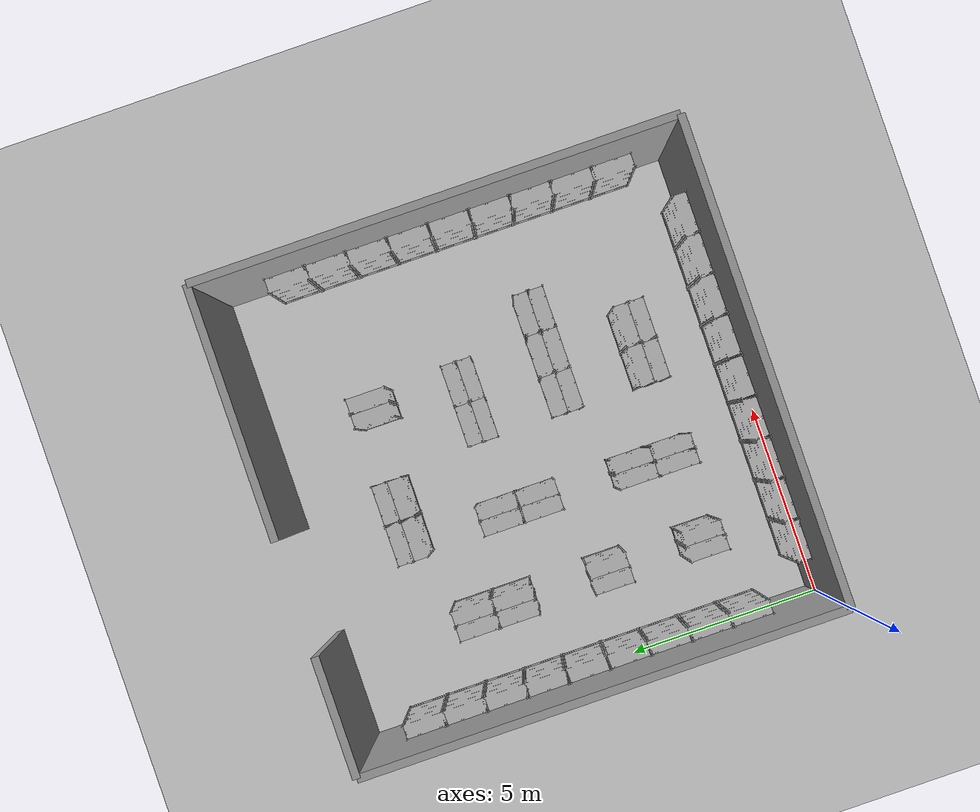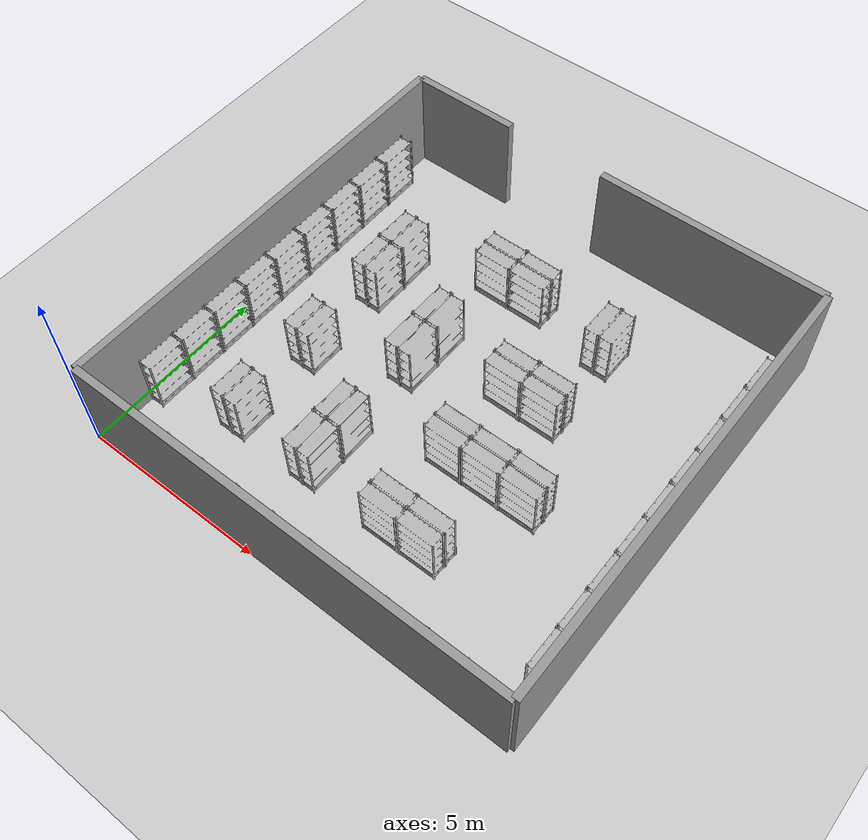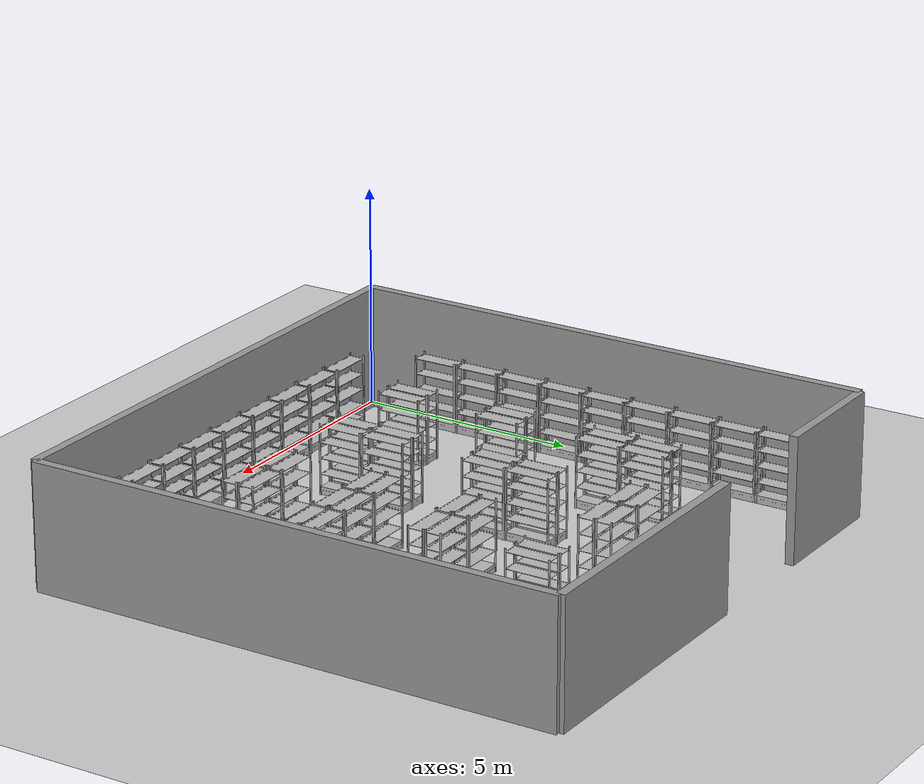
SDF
<sdf version="1.6">
 <world name="default">
  <model name="ground_plane">
   <static>1</static>
   <link name="link">
    <collision name="collision">
     <geometry><plane><normal>0 0 1</normal><size>100 100</size></plane></geometry>
     <surface>
      <contact><collide_bitmask>65535</collide_bitmask></contact>
      <friction><ode><mu>1000</mu><mu2>1000</mu2></ode></friction>
     </surface>
    </collision>
    <visual name="visual">
     <cast_shadows>0</cast_shadows>
     <geometry><plane><normal>0 0 1</normal><size>100 100</size></plane></geometry>
     <material>
      <script><uri>file://media/materials/scripts/gazebo.material</uri><name>Gazebo/Grey</name></script>
     </material>
    </visual>
   </link>
  </model>
  <model name="store_shelf_moduled_0">
   <link name="link">
    <collision name="collision">
     <geometry><mesh><uri>model://store_shelf_moduled/meshes/store_shelf_moduled.dae</uri></mesh></geometry>
    </collision>
    <visual name="visual">
     <geometry><mesh><uri>model://store_shelf_moduled/meshes/store_shelf_moduled.dae</uri></mesh></geometry>
    </visual>
    <inertial>
     <mass>1000</mass>
     <inertia>
      <ixx>840083</ixx>
      <ixy>0</ixy>
      <ixz>0</ixz>
      <iyy>475500</iyy>
      <iyz>0</iyz>
      <izz>1.30208e+06</izz>
     </inertia>
    </inertial>
   </link>
   <static>1</static>
   <pose>1.16 0.2 0 0 0 0</pose>
  </model>
  <model name="store_shelf_moduled_1">
   <link name="link">
    <collision name="collision">
     <geometry><mesh><uri>model://store_shelf_moduled/meshes/store_shelf_moduled.dae</uri></mesh></geometry>
    </collision>
    <visual name="visual">
     <geometry><mesh><uri>model://store_shelf_moduled/meshes/store_shelf_moduled.dae</uri></mesh></geometry>
    </visual>
    <inertial>
     <mass>1000</mass>
     <inertia>
      <ixx>840083</ixx>
      <ixy>0</ixy>
      <ixz>0</ixz>
      <iyy>475500</iyy>
      <iyz>0</iyz>
      <izz>1.30208e+06</izz>
     </inertia>
    </inertial>
   </link>
   <static>1</static>
   <pose>2.22 0.2 0 0 0 0</pose>
  </model>
  <model name="store_shelf_moduled_2">
   <link name="link">
    <collision name="collision">
     <geometry><mesh><uri>model://store_shelf_moduled/meshes/store_shelf_moduled.dae</uri></mesh></geometry>
    </collision>
    <visual name="visual">
     <geometry><mesh><uri>model://store_shelf_moduled/meshes/store_shelf_moduled.dae</uri></mesh></geometry>
    </visual>
    <inertial>
     <mass>1000</mass>
     <inertia>
      <ixx>840083</ixx>
      <ixy>0</ixy>
      <ixz>0</ixz>
      <iyy>475500</iyy>
      <iyz>0</iyz>
      <izz>1.30208e+06</izz>
     </inertia>
    </inertial>
   </link>
   <static>1</static>
   <pose>3.28 0.2 0 0 0 0</pose>
  </model>
  <model name="store_shelf_moduled_3">
   <link name="link">
    <collision name="collision">
     <geometry><mesh><uri>model://store_shelf_moduled/meshes/store_shelf_moduled.dae</uri></mesh></geometry>
    </collision>
    <visual name="visual">
     <geometry><mesh><uri>model://store_shelf_moduled/meshes/store_shelf_moduled.dae</uri></mesh></geometry>
    </visual>
    <inertial>
     <mass>1000</mass>
     <inertia>
      <ixx>840083</ixx>
      <ixy>0</ixy>
      <ixz>0</ixz>
      <iyy>475500</iyy>
      <iyz>0</iyz>
      <izz>1.30208e+06</izz>
     </inertia>
    </inertial>
   </link>
   <static>1</static>
   <pose>4.34 0.2 0 0 0 0</pose>
  </model>
  <model name="store_shelf_moduled_4">
   <link name="link">
    <collision name="collision">
     <geometry><mesh><uri>model://store_shelf_moduled/meshes/store_shelf_moduled.dae</uri></mesh></geometry>
    </collision>
    <visual name="visual">
     <geometry><mesh><uri>model://store_shelf_moduled/meshes/store_shelf_moduled.dae</uri></mesh></geometry>
    </visual>
    <inertial>
     <mass>1000</mass>
     <inertia>
      <ixx>840083</ixx>
      <ixy>0</ixy>
      <ixz>0</ixz>
      <iyy>475500</iyy>
      <iyz>0</iyz>
      <izz>1.30208e+06</izz>
     </inertia>
    </inertial>
   </link>
   <static>1</static>
   <pose>5.4 0.2 0 0 0 0</pose>
  </model>
  <model name="store_shelf_moduled_5">
   <link name="link">
    <collision name="collision">
     <geometry><mesh><uri>model://store_shelf_moduled/meshes/store_shelf_moduled.dae</uri></mesh></geometry>
    </collision>
    <visual name="visual">
     <geometry><mesh><uri>model://store_shelf_moduled/meshes/store_shelf_moduled.dae</uri></mesh></geometry>
    </visual>
    <inertial>
     <mass>1000</mass>
     <inertia>
      <ixx>840083</ixx>
      <ixy>0</ixy>
      <ixz>0</ixz>
      <iyy>475500</iyy>
      <iyz>0</iyz>
      <izz>1.30208e+06</izz>
     </inertia>
    </inertial>
   </link>
   <static>1</static>
   <pose>6.46 0.2 0 0 0 0</pose>
  </model>
  <model name="store_shelf_moduled_6">
   <link name="link">
    <collision name="collision">
     <geometry><mesh><uri>model://store_shelf_moduled/meshes/store_shelf_moduled.dae</uri></mesh></geometry>
    </collision>
    <visual name="visual">
     <geometry><mesh><uri>model://store_shelf_moduled/meshes/store_shelf_moduled.dae</uri></mesh></geometry>
    </visual>
    <inertial>
     <mass>1000</mass>
     <inertia>
      <ixx>840083</ixx>
      <ixy>0</ixy>
      <ixz>0</ixz>
      <iyy>475500</iyy>
      <iyz>0</iyz>
      <izz>1.30208e+06</izz>
     </inertia>
    </inertial>
   </link>
   <static>1</static>
   <pose>7.52 0.2 0 0 0 0</pose>
  </model>
  <model name="store_shelf_moduled_7">
   <link name="link">
    <collision name="collision">
     <geometry><mesh><uri>model://store_shelf_moduled/meshes/store_shelf_moduled.dae</uri></mesh></geometry>
    </collision>
    <visual name="visual">
     <geometry><mesh><uri>model://store_shelf_moduled/meshes/store_shelf_moduled.dae</uri></mesh></geometry>
    </visual>
    <inertial>
     <mass>1000</mass>
     <inertia>
      <ixx>840083</ixx>
      <ixy>0</ixy>
      <ixz>0</ixz>
      <iyy>475500</iyy>
      <iyz>0</iyz>
      <izz>1.30208e+06</izz>
     </inertia>
    </inertial>
   </link>
   <static>1</static>
   <pose>8.58 0.2 0 0 0 0</pose>
  </model>
  <model name="store_shelf_moduled_8">
   <link name="link">
    <collision name="collision">
     <geometry><mesh><uri>model://store_shelf_moduled/meshes/store_shelf_moduled.dae</uri></mesh></geometry>
    </collision>
    <visual name="visual">
     <geometry><mesh><uri>model://store_shelf_moduled/meshes/store_shelf_moduled.dae</uri></mesh></geometry>
    </visual>
    <inertial>
     <mass>1000</mass>
     <inertia>
      <ixx>840083</ixx>
      <ixy>0</ixy>
      <ixz>0</ixz>
      <iyy>475500</iyy>
      <iyz>0</iyz>
      <izz>1.30208e+06</izz>
     </inertia>
    </inertial>
   </link>
   <static>1</static>
   <pose>9.64 0.2 0 0 0 0</pose>
  </model>
  <model name="store_shelf_moduled_9">
   <link name="link">
    <collision name="collision">
     <geometry><mesh><uri>model://store_shelf_moduled/meshes/store_shelf_moduled.dae</uri></mesh></geometry>
    </collision>
    <visual name="visual">
     <geometry><mesh><uri>model://store_shelf_moduled/meshes/store_shelf_moduled.dae</uri></mesh></geometry>
    </visual>
    <inertial>
     <mass>1000</mass>
     <inertia>
      <ixx>840083</ixx>
      <ixy>0</ixy>
      <ixz>0</ixz>
      <iyy>475500</iyy>
      <iyz>0</iyz>
      <izz>1.30208e+06</izz>
     </inertia>
    </inertial>
   </link>
   <static>1</static>
   <pose>12.02 1.16 0 0 0 1.570796</pose>
  </model>
  <model name="store_shelf_moduled_10">
   <link name="link">
    <collision name="collision">
     <geometry><mesh><uri>model://store_shelf_moduled/meshes/store_shelf_moduled.dae</uri></mesh></geometry>
    </collision>
    <visual name="visual">
     <geometry><mesh><uri>model://store_shelf_moduled/meshes/store_shelf_moduled.dae</uri></mesh></geometry>
    </visual>
    <inertial>
     <mass>1000</mass>
     <inertia>
      <ixx>840083</ixx>
      <ixy>0</ixy>
      <ixz>0</ixz>
      <iyy>475500</iyy>
      <iyz>0</iyz>
      <izz>1.30208e+06</izz>
     </inertia>
    </inertial>
   </link>
   <static>1</static>
   <pose>12.02 2.22 0 0 0 1.570796</pose>
  </model>
  <model name="store_shelf_moduled_11">
   <link name="link">
    <collision name="collision">
     <geometry><mesh><uri>model://store_shelf_moduled/meshes/store_shelf_moduled.dae</uri></mesh></geometry>
    </collision>
    <visual name="visual">
     <geometry><mesh><uri>model://store_shelf_moduled/meshes/store_shelf_moduled.dae</uri></mesh></geometry>
    </visual>
    <inertial>
     <mass>1000</mass>
     <inertia>
      <ixx>840083</ixx>
      <ixy>0</ixy>
      <ixz>0</ixz>
      <iyy>475500</iyy>
      <iyz>0</iyz>
      <izz>1.30208e+06</izz>
     </inertia>
    </inertial>
   </link>
   <static>1</static>
   <pose>12.02 3.28 0 0 0 1.570796</pose>
  </model>
  <model name="store_shelf_moduled_12">
   <link name="link">
    <collision name="collision">
     <geometry><mesh><uri>model://store_shelf_moduled/meshes/store_shelf_moduled.dae</uri></mesh></geometry>
    </collision>
    <visual name="visual">
     <geometry><mesh><uri>model://store_shelf_moduled/meshes/store_shelf_moduled.dae</uri></mesh></geometry>
    </visual>
    <inertial>
     <mass>1000</mass>
     <inertia>
      <ixx>840083</ixx>
      <ixy>0</ixy>
      <ixz>0</ixz>
      <iyy>475500</iyy>
      <iyz>0</iyz>
      <izz>1.30208e+06</izz>
     </inertia>
    </inertial>
   </link>
   <static>1</static>
   <pose>12.02 4.34 0 0 0 1.570796</pose>
  </model>
  <model name="store_shelf_moduled_13">
   <link name="link">
    <collision name="collision">
     <geometry><mesh><uri>model://store_shelf_moduled/meshes/store_shelf_moduled.dae</uri></mesh></geometry>
    </collision>
    <visual name="visual">
     <geometry><mesh><uri>model://store_shelf_moduled/meshes/store_shelf_moduled.dae</uri></mesh></geometry>
    </visual>
    <inertial>
     <mass>1000</mass>
     <inertia>
      <ixx>840083</ixx>
      <ixy>0</ixy>
      <ixz>0</ixz>
      <iyy>475500</iyy>
      <iyz>0</iyz>
      <izz>1.30208e+06</izz>
     </inertia>
    </inertial>
   </link>
   <static>1</static>
   <pose>12.02 5.4 0 0 0 1.570796</pose>
  </model>
  <model name="store_shelf_moduled_14">
   <link name="link">
    <collision name="collision">
     <geometry><mesh><uri>model://store_shelf_moduled/meshes/store_shelf_moduled.dae</uri></mesh></geometry>
    </collision>
    <visual name="visual">
     <geometry><mesh><uri>model://store_shelf_moduled/meshes/store_shelf_moduled.dae</uri></mesh></geometry>
    </visual>
    <inertial>
     <mass>1000</mass>
     <inertia>
      <ixx>840083</ixx>
      <ixy>0</ixy>
      <ixz>0</ixz>
      <iyy>475500</iyy>
      <iyz>0</iyz>
      <izz>1.30208e+06</izz>
     </inertia>
    </inertial>
   </link>
   <static>1</static>
   <pose>12.02 6.46 0 0 0 1.570796</pose>
  </model>
  <model name="store_shelf_moduled_15">
   <link name="link">
    <collision name="collision">
     <geometry><mesh><uri>model://store_shelf_moduled/meshes/store_shelf_moduled.dae</uri></mesh></geometry>
    </collision>
    <visual name="visual">
     <geometry><mesh><uri>model://store_shelf_moduled/meshes/store_shelf_moduled.dae</uri></mesh></geometry>
    </visual>
    <inertial>
     <mass>1000</mass>
     <inertia>
      <ixx>840083</ixx>
      <ixy>0</ixy>
      <ixz>0</ixz>
      <iyy>475500</iyy>
      <iyz>0</iyz>
      <izz>1.30208e+06</izz>
     </inertia>
    </inertial>
   </link>
   <static>1</static>
   <pose>12.02 7.52 0 0 0 1.570796</pose>
  </model>
  <model name="store_shelf_moduled_16">
   <link name="link">
    <collision name="collision">
     <geometry><mesh><uri>model://store_shelf_moduled/meshes/store_shelf_moduled.dae</uri></mesh></geometry>
    </collision>
    <visual name="visual">
     <geometry><mesh><uri>model://store_shelf_moduled/meshes/store_shelf_moduled.dae</uri></mesh></geometry>
    </visual>
    <inertial>
     <mass>1000</mass>
     <inertia>
      <ixx>840083</ixx>
      <ixy>0</ixy>
      <ixz>0</ixz>
      <iyy>475500</iyy>
      <iyz>0</iyz>
      <izz>1.30208e+06</izz>
     </inertia>
    </inertial>
   </link>
   <static>1</static>
   <pose>12.02 8.58 0 0 0 1.570796</pose>
  </model>
  <model name="store_shelf_moduled_17">
   <link name="link">
    <collision name="collision">
     <geometry><mesh><uri>model://store_shelf_moduled/meshes/store_shelf_moduled.dae</uri></mesh></geometry>
    </collision>
    <visual name="visual">
     <geometry><mesh><uri>model://store_shelf_moduled/meshes/store_shelf_moduled.dae</uri></mesh></geometry>
    </visual>
    <inertial>
     <mass>1000</mass>
     <inertia>
      <ixx>840083</ixx>
      <ixy>0</ixy>
      <ixz>0</ixz>
      <iyy>475500</iyy>
      <iyz>0</iyz>
      <izz>1.30208e+06</izz>
     </inertia>
    </inertial>
   </link>
   <static>1</static>
   <pose>12.02 9.64 0 0 0 1.570796</pose>
  </model>
  <model name="store_shelf_moduled_18">
   <link name="link">
    <collision name="collision">
     <geometry><mesh><uri>model://store_shelf_moduled/meshes/store_shelf_moduled.dae</uri></mesh></geometry>
    </collision>
    <visual name="visual">
     <geometry><mesh><uri>model://store_shelf_moduled/meshes/store_shelf_moduled.dae</uri></mesh></geometry>
    </visual>
    <inertial>
     <mass>1000</mass>
     <inertia>
      <ixx>840083</ixx>
      <ixy>0</ixy>
      <ixz>0</ixz>
      <iyy>475500</iyy>
      <iyz>0</iyz>
      <izz>1.30208e+06</izz>
     </inertia>
    </inertial>
   </link>
   <static>1</static>
   <pose>0.2 11.06 0 0 0 -1.570796</pose>
  </model>
  <model name="store_shelf_moduled_19">
   <link name="link">
    <collision name="collision">
     <geometry><mesh><uri>model://store_shelf_moduled/meshes/store_shelf_moduled.dae</uri></mesh></geometry>
    </collision>
    <visual name="visual">
     <geometry><mesh><uri>model://store_shelf_moduled/meshes/store_shelf_moduled.dae</uri></mesh></geometry>
    </visual>
    <inertial>
     <mass>1000</mass>
     <inertia>
      <ixx>840083</ixx>
      <ixy>0</ixy>
      <ixz>0</ixz>
      <iyy>475500</iyy>
      <iyz>0</iyz>
      <izz>1.30208e+06</izz>
     </inertia>
    </inertial>
   </link>
   <static>1</static>
   <pose>0.2 10 0 0 0 -1.570796</pose>
  </model>
  <model name="store_shelf_moduled_20">
   <link name="link">
    <collision name="collision">
     <geometry><mesh><uri>model://store_shelf_moduled/meshes/store_shelf_moduled.dae</uri></mesh></geometry>
    </collision>
    <visual name="visual">
     <geometry><mesh><uri>model://store_shelf_moduled/meshes/store_shelf_moduled.dae</uri></mesh></geometry>
    </visual>
    <inertial>
     <mass>1000</mass>
     <inertia>
      <ixx>840083</ixx>
      <ixy>0</ixy>
      <ixz>0</ixz>
      <iyy>475500</iyy>
      <iyz>0</iyz>
      <izz>1.30208e+06</izz>
     </inertia>
    </inertial>
   </link>
   <static>1</static>
   <pose>0.2 8.94 0 0 0 -1.570796</pose>
  </model>
  <model name="store_shelf_moduled_21">
   <link name="link">
    <collision name="collision">
     <geometry><mesh><uri>model://store_shelf_moduled/meshes/store_shelf_moduled.dae</uri></mesh></geometry>
    </collision>
    <visual name="visual">
     <geometry><mesh><uri>model://store_shelf_moduled/meshes/store_shelf_moduled.dae</uri></mesh></geometry>
    </visual>
    <inertial>
     <mass>1000</mass>
     <inertia>
      <ixx>840083</ixx>
      <ixy>0</ixy>
      <ixz>0</ixz>
      <iyy>475500</iyy>
      <iyz>0</iyz>
      <izz>1.30208e+06</izz>
     </inertia>
    </inertial>
   </link>
   <static>1</static>
   <pose>0.2 7.88 0 0 0 -1.570796</pose>
  </model>
  <model name="store_shelf_moduled_22">
   <link name="link">
    <collision name="collision">
     <geometry><mesh><uri>model://store_shelf_moduled/meshes/store_shelf_moduled.dae</uri></mesh></geometry>
    </collision>
    <visual name="visual">
     <geometry><mesh><uri>model://store_shelf_moduled/meshes/store_shelf_moduled.dae</uri></mesh></geometry>
    </visual>
    <inertial>
     <mass>1000</mass>
     <inertia>
      <ixx>840083</ixx>
      <ixy>0</ixy>
      <ixz>0</ixz>
      <iyy>475500</iyy>
      <iyz>0</iyz>
      <izz>1.30208e+06</izz>
     </inertia>
    </inertial>
   </link>
   <static>1</static>
   <pose>0.2 6.82 0 0 0 -1.570796</pose>
  </model>
  <model name="store_shelf_moduled_23">
   <link name="link">
    <collision name="collision">
     <geometry><mesh><uri>model://store_shelf_moduled/meshes/store_shelf_moduled.dae</uri></mesh></geometry>
    </collision>
    <visual name="visual">
     <geometry><mesh><uri>model://store_shelf_moduled/meshes/store_shelf_moduled.dae</uri></mesh></geometry>
    </visual>
    <inertial>
     <mass>1000</mass>
     <inertia>
      <ixx>840083</ixx>
      <ixy>0</ixy>
      <ixz>0</ixz>
      <iyy>475500</iyy>
      <iyz>0</iyz>
      <izz>1.30208e+06</izz>
     </inertia>
    </inertial>
   </link>
   <static>1</static>
   <pose>0.2 5.76 0 0 0 -1.570796</pose>
  </model>
  <model name="store_shelf_moduled_24">
   <link name="link">
    <collision name="collision">
     <geometry><mesh><uri>model://store_shelf_moduled/meshes/store_shelf_moduled.dae</uri></mesh></geometry>
    </collision>
    <visual name="visual">
     <geometry><mesh><uri>model://store_shelf_moduled/meshes/store_shelf_moduled.dae</uri></mesh></geometry>
    </visual>
    <inertial>
     <mass>1000</mass>
     <inertia>
      <ixx>840083</ixx>
      <ixy>0</ixy>
      <ixz>0</ixz>
      <iyy>475500</iyy>
      <iyz>0</iyz>
      <izz>1.30208e+06</izz>
     </inertia>
    </inertial>
   </link>
   <static>1</static>
   <pose>0.2 4.7 0 0 0 -1.570796</pose>
  </model>
  <model name="store_shelf_moduled_25">
   <link name="link">
    <collision name="collision">
     <geometry><mesh><uri>model://store_shelf_moduled/meshes/store_shelf_moduled.dae</uri></mesh></geometry>
    </collision>
    <visual name="visual">
     <geometry><mesh><uri>model://store_shelf_moduled/meshes/store_shelf_moduled.dae</uri></mesh></geometry>
    </visual>
    <inertial>
     <mass>1000</mass>
     <inertia>
      <ixx>840083</ixx>
      <ixy>0</ixy>
      <ixz>0</ixz>
      <iyy>475500</iyy>
      <iyz>0</iyz>
      <izz>1.30208e+06</izz>
     </inertia>
    </inertial>
   </link>
   <static>1</static>
   <pose>0.2 3.64 0 0 0 -1.570796</pose>
  </model>
  <model name="store_shelf_moduled_26">
   <link name="link">
    <collision name="collision">
     <geometry><mesh><uri>model://store_shelf_moduled/meshes/store_shelf_moduled.dae</uri></mesh></geometry>
    </collision>
    <visual name="visual">
     <geometry><mesh><uri>model://store_shelf_moduled/meshes/store_shelf_moduled.dae</uri></mesh></geometry>
    </visual>
    <inertial>
     <mass>1000</mass>
     <inertia>
      <ixx>840083</ixx>
      <ixy>0</ixy>
      <ixz>0</ixz>
      <iyy>475500</iyy>
      <iyz>0</iyz>
      <izz>1.30208e+06</izz>
     </inertia>
    </inertial>
   </link>
   <static>1</static>
   <pose>0.2 2.58 0 0 0 -1.570796</pose>
  </model>
  <model name="store_shelf_moduled_27">
   <link name="link">
    <collision name="collision">
     <geometry><mesh><uri>model://store_shelf_moduled/meshes/store_shelf_moduled.dae</uri></mesh></geometry>
    </collision>
    <visual name="visual">
     <geometry><mesh><uri>model://store_shelf_moduled/meshes/store_shelf_moduled.dae</uri></mesh></geometry>
    </visual>
    <inertial>
     <mass>1000</mass>
     <inertia>
      <ixx>840083</ixx>
      <ixy>0</ixy>
      <ixz>0</ixz>
      <iyy>475500</iyy>
      <iyz>0</iyz>
      <izz>1.30208e+06</izz>
     </inertia>
    </inertial>
   </link>
   <static>1</static>
   <pose>4.67 2.01 0 0 0 1.570796</pose>
  </model>
  <model name="store_shelf_moduled_28">
   <link name="link">
    <collision name="collision">
     <geometry><mesh><uri>model://store_shelf_moduled/meshes/store_shelf_moduled.dae</uri></mesh></geometry>
    </collision>
    <visual name="visual">
     <geometry><mesh><uri>model://store_shelf_moduled/meshes/store_shelf_moduled.dae</uri></mesh></geometry>
    </visual>
    <inertial>
     <mass>1000</mass>
     <inertia>
      <ixx>840083</ixx>
      <ixy>0</ixy>
      <ixz>0</ixz>
      <iyy>475500</iyy>
      <iyz>0</iyz>
      <izz>1.30208e+06</izz>
     </inertia>
    </inertial>
   </link>
   <static>1</static>
   <pose>4.67 3.07 0 0 0 -1.570796</pose>
  </model>
  <model name="store_shelf_moduled_29">
   <link name="link">
    <collision name="collision">
     <geometry><mesh><uri>model://store_shelf_moduled/meshes/store_shelf_moduled.dae</uri></mesh></geometry>
    </collision>
    <visual name="visual">
     <geometry><mesh><uri>model://store_shelf_moduled/meshes/store_shelf_moduled.dae</uri></mesh></geometry>
    </visual>
    <inertial>
     <mass>1000</mass>
     <inertia>
      <ixx>840083</ixx>
      <ixy>0</ixy>
      <ixz>0</ixz>
      <iyy>475500</iyy>
      <iyz>0</iyz>
      <izz>1.30208e+06</izz>
     </inertia>
    </inertial>
   </link>
   <static>1</static>
   <pose>4.67 3.07 0 0 0 1.570796</pose>
  </model>
  <model name="store_shelf_moduled_30">
   <link name="link">
    <collision name="collision">
     <geometry><mesh><uri>model://store_shelf_moduled/meshes/store_shelf_moduled.dae</uri></mesh></geometry>
    </collision>
    <visual name="visual">
     <geometry><mesh><uri>model://store_shelf_moduled/meshes/store_shelf_moduled.dae</uri></mesh></geometry>
    </visual>
    <inertial>
     <mass>1000</mass>
     <inertia>
      <ixx>840083</ixx>
      <ixy>0</ixy>
      <ixz>0</ixz>
      <iyy>475500</iyy>
      <iyz>0</iyz>
      <izz>1.30208e+06</izz>
     </inertia>
    </inertial>
   </link>
   <static>1</static>
   <pose>4.67 4.13 0 0 0 -1.570796</pose>
  </model>
  <model name="store_shelf_moduled_31">
   <link name="link">
    <collision name="collision">
     <geometry><mesh><uri>model://store_shelf_moduled/meshes/store_shelf_moduled.dae</uri></mesh></geometry>
    </collision>
    <visual name="visual">
     <geometry><mesh><uri>model://store_shelf_moduled/meshes/store_shelf_moduled.dae</uri></mesh></geometry>
    </visual>
    <inertial>
     <mass>1000</mass>
     <inertia>
      <ixx>840083</ixx>
      <ixy>0</ixy>
      <ixz>0</ixz>
      <iyy>475500</iyy>
      <iyz>0</iyz>
      <izz>1.30208e+06</izz>
     </inertia>
    </inertial>
   </link>
   <static>1</static>
   <pose>2.43 6.93 0 0 0 1.570796</pose>
  </model>
  <model name="store_shelf_moduled_32">
   <link name="link">
    <collision name="collision">
     <geometry><mesh><uri>model://store_shelf_moduled/meshes/store_shelf_moduled.dae</uri></mesh></geometry>
    </collision>
    <visual name="visual">
     <geometry><mesh><uri>model://store_shelf_moduled/meshes/store_shelf_moduled.dae</uri></mesh></geometry>
    </visual>
    <inertial>
     <mass>1000</mass>
     <inertia>
      <ixx>840083</ixx>
      <ixy>0</ixy>
      <ixz>0</ixz>
      <iyy>475500</iyy>
      <iyz>0</iyz>
      <izz>1.30208e+06</izz>
     </inertia>
    </inertial>
   </link>
   <static>1</static>
   <pose>2.43 7.99 0 0 0 -1.570796</pose>
  </model>
  <model name="store_shelf_moduled_33">
   <link name="link">
    <collision name="collision">
     <geometry><mesh><uri>model://store_shelf_moduled/meshes/store_shelf_moduled.dae</uri></mesh></geometry>
    </collision>
    <visual name="visual">
     <geometry><mesh><uri>model://store_shelf_moduled/meshes/store_shelf_moduled.dae</uri></mesh></geometry>
    </visual>
    <inertial>
     <mass>1000</mass>
     <inertia>
      <ixx>840083</ixx>
      <ixy>0</ixy>
      <ixz>0</ixz>
      <iyy>475500</iyy>
      <iyz>0</iyz>
      <izz>1.30208e+06</izz>
     </inertia>
    </inertial>
   </link>
   <static>1</static>
   <pose>2.43 7.99 0 0 0 1.570796</pose>
  </model>
  <model name="store_shelf_moduled_34">
   <link name="link">
    <collision name="collision">
     <geometry><mesh><uri>model://store_shelf_moduled/meshes/store_shelf_moduled.dae</uri></mesh></geometry>
    </collision>
    <visual name="visual">
     <geometry><mesh><uri>model://store_shelf_moduled/meshes/store_shelf_moduled.dae</uri></mesh></geometry>
    </visual>
    <inertial>
     <mass>1000</mass>
     <inertia>
      <ixx>840083</ixx>
      <ixy>0</ixy>
      <ixz>0</ixz>
      <iyy>475500</iyy>
      <iyz>0</iyz>
      <izz>1.30208e+06</izz>
     </inertia>
    </inertial>
   </link>
   <static>1</static>
   <pose>2.43 9.05 0 0 0 -1.570796</pose>
  </model>
  <model name="store_shelf_moduled_35">
   <link name="link">
    <collision name="collision">
     <geometry><mesh><uri>model://store_shelf_moduled/meshes/store_shelf_moduled.dae</uri></mesh></geometry>
    </collision>
    <visual name="visual">
     <geometry><mesh><uri>model://store_shelf_moduled/meshes/store_shelf_moduled.dae</uri></mesh></geometry>
    </visual>
    <inertial>
     <mass>1000</mass>
     <inertia>
      <ixx>840083</ixx>
      <ixy>0</ixy>
      <ixz>0</ixz>
      <iyy>475500</iyy>
      <iyz>0</iyz>
      <izz>1.30208e+06</izz>
     </inertia>
    </inertial>
   </link>
   <static>1</static>
   <pose>2.43 2.01 0 0 0 1.570796</pose>
  </model>
  <model name="store_shelf_moduled_36">
   <link name="link">
    <collision name="collision">
     <geometry><mesh><uri>model://store_shelf_moduled/meshes/store_shelf_moduled.dae</uri></mesh></geometry>
    </collision>
    <visual name="visual">
     <geometry><mesh><uri>model://store_shelf_moduled/meshes/store_shelf_moduled.dae</uri></mesh></geometry>
    </visual>
    <inertial>
     <mass>1000</mass>
     <inertia>
      <ixx>840083</ixx>
      <ixy>0</ixy>
      <ixz>0</ixz>
      <iyy>475500</iyy>
      <iyz>0</iyz>
      <izz>1.30208e+06</izz>
     </inertia>
    </inertial>
   </link>
   <static>1</static>
   <pose>2.43 3.07 0 0 0 -1.570796</pose>
  </model>
  <model name="store_shelf_moduled_37">
   <link name="link">
    <collision name="collision">
     <geometry><mesh><uri>model://store_shelf_moduled/meshes/store_shelf_moduled.dae</uri></mesh></geometry>
    </collision>
    <visual name="visual">
     <geometry><mesh><uri>model://store_shelf_moduled/meshes/store_shelf_moduled.dae</uri></mesh></geometry>
    </visual>
    <inertial>
     <mass>1000</mass>
     <inertia>
      <ixx>840083</ixx>
      <ixy>0</ixy>
      <ixz>0</ixz>
      <iyy>475500</iyy>
      <iyz>0</iyz>
      <izz>1.30208e+06</izz>
     </inertia>
    </inertial>
   </link>
   <static>1</static>
   <pose>8.19 8.73 0 0 0 1.570796</pose>
  </model>
  <model name="store_shelf_moduled_38">
   <link name="link">
    <collision name="collision">
     <geometry><mesh><uri>model://store_shelf_moduled/meshes/store_shelf_moduled.dae</uri></mesh></geometry>
    </collision>
    <visual name="visual">
     <geometry><mesh><uri>model://store_shelf_moduled/meshes/store_shelf_moduled.dae</uri></mesh></geometry>
    </visual>
    <inertial>
     <mass>1000</mass>
     <inertia>
      <ixx>840083</ixx>
      <ixy>0</ixy>
      <ixz>0</ixz>
      <iyy>475500</iyy>
      <iyz>0</iyz>
      <izz>1.30208e+06</izz>
     </inertia>
    </inertial>
   </link>
   <static>1</static>
   <pose>8.19 9.79 0 0 0 -1.570796</pose>
  </model>
  <model name="store_shelf_moduled_39">
   <link name="link">
    <collision name="collision">
     <geometry><mesh><uri>model://store_shelf_moduled/meshes/store_shelf_moduled.dae</uri></mesh></geometry>
    </collision>
    <visual name="visual">
     <geometry><mesh><uri>model://store_shelf_moduled/meshes/store_shelf_moduled.dae</uri></mesh></geometry>
    </visual>
    <inertial>
     <mass>1000</mass>
     <inertia>
      <ixx>840083</ixx>
      <ixy>0</ixy>
      <ixz>0</ixz>
      <iyy>475500</iyy>
      <iyz>0</iyz>
      <izz>1.30208e+06</izz>
     </inertia>
    </inertial>
   </link>
   <static>1</static>
   <pose>6.49 6.91 0 0 0 0</pose>
  </model>
  <model name="store_shelf_moduled_40">
   <link name="link">
    <collision name="collision">
     <geometry><mesh><uri>model://store_shelf_moduled/meshes/store_shelf_moduled.dae</uri></mesh></geometry>
    </collision>
    <visual name="visual">
     <geometry><mesh><uri>model://store_shelf_moduled/meshes/store_shelf_moduled.dae</uri></mesh></geometry>
    </visual>
    <inertial>
     <mass>1000</mass>
     <inertia>
      <ixx>840083</ixx>
      <ixy>0</ixy>
      <ixz>0</ixz>
      <iyy>475500</iyy>
      <iyz>0</iyz>
      <izz>1.30208e+06</izz>
     </inertia>
    </inertial>
   </link>
   <static>1</static>
   <pose>7.55 6.91 0 0 0 -3.141593</pose>
  </model>
  <model name="store_shelf_moduled_41">
   <link name="link">
    <collision name="collision">
     <geometry><mesh><uri>model://store_shelf_moduled/meshes/store_shelf_moduled.dae</uri></mesh></geometry>
    </collision>
    <visual name="visual">
     <geometry><mesh><uri>model://store_shelf_moduled/meshes/store_shelf_moduled.dae</uri></mesh></geometry>
    </visual>
    <inertial>
     <mass>1000</mass>
     <inertia>
      <ixx>840083</ixx>
      <ixy>0</ixy>
      <ixz>0</ixz>
      <iyy>475500</iyy>
      <iyz>0</iyz>
      <izz>1.30208e+06</izz>
     </inertia>
    </inertial>
   </link>
   <static>1</static>
   <pose>7.55 6.91 0 0 0 0</pose>
  </model>
  <model name="store_shelf_moduled_42">
   <link name="link">
    <collision name="collision">
     <geometry><mesh><uri>model://store_shelf_moduled/meshes/store_shelf_moduled.dae</uri></mesh></geometry>
    </collision>
    <visual name="visual">
     <geometry><mesh><uri>model://store_shelf_moduled/meshes/store_shelf_moduled.dae</uri></mesh></geometry>
    </visual>
    <inertial>
     <mass>1000</mass>
     <inertia>
      <ixx>840083</ixx>
      <ixy>0</ixy>
      <ixz>0</ixz>
      <iyy>475500</iyy>
      <iyz>0</iyz>
      <izz>1.30208e+06</izz>
     </inertia>
    </inertial>
   </link>
   <static>1</static>
   <pose>8.61 6.91 0 0 0 -3.141593</pose>
  </model>
  <model name="store_shelf_moduled_43">
   <link name="link">
    <collision name="collision">
     <geometry><mesh><uri>model://store_shelf_moduled/meshes/store_shelf_moduled.dae</uri></mesh></geometry>
    </collision>
    <visual name="visual">
     <geometry><mesh><uri>model://store_shelf_moduled/meshes/store_shelf_moduled.dae</uri></mesh></geometry>
    </visual>
    <inertial>
     <mass>1000</mass>
     <inertia>
      <ixx>840083</ixx>
      <ixy>0</ixy>
      <ixz>0</ixz>
      <iyy>475500</iyy>
      <iyz>0</iyz>
      <izz>1.30208e+06</izz>
     </inertia>
    </inertial>
   </link>
   <static>1</static>
   <pose>2.43 4.47 0 0 0 1.570796</pose>
  </model>
  <model name="store_shelf_moduled_44">
   <link name="link">
    <collision name="collision">
     <geometry><mesh><uri>model://store_shelf_moduled/meshes/store_shelf_moduled.dae</uri></mesh></geometry>
    </collision>
    <visual name="visual">
     <geometry><mesh><uri>model://store_shelf_moduled/meshes/store_shelf_moduled.dae</uri></mesh></geometry>
    </visual>
    <inertial>
     <mass>1000</mass>
     <inertia>
      <ixx>840083</ixx>
      <ixy>0</ixy>
      <ixz>0</ixz>
      <iyy>475500</iyy>
      <iyz>0</iyz>
      <izz>1.30208e+06</izz>
     </inertia>
    </inertial>
   </link>
   <static>1</static>
   <pose>2.43 5.53 0 0 0 -1.570796</pose>
  </model>
  <model name="store_shelf_moduled_45">
   <link name="link">
    <collision name="collision">
     <geometry><mesh><uri>model://store_shelf_moduled/meshes/store_shelf_moduled.dae</uri></mesh></geometry>
    </collision>
    <visual name="visual">
     <geometry><mesh><uri>model://store_shelf_moduled/meshes/store_shelf_moduled.dae</uri></mesh></geometry>
    </visual>
    <inertial>
     <mass>1000</mass>
     <inertia>
      <ixx>840083</ixx>
      <ixy>0</ixy>
      <ixz>0</ixz>
      <iyy>475500</iyy>
      <iyz>0</iyz>
      <izz>1.30208e+06</izz>
     </inertia>
    </inertial>
   </link>
   <static>1</static>
   <pose>4.67 5.53 0 0 0 1.570796</pose>
  </model>
  <model name="store_shelf_moduled_46">
   <link name="link">
    <collision name="collision">
     <geometry><mesh><uri>model://store_shelf_moduled/meshes/store_shelf_moduled.dae</uri></mesh></geometry>
    </collision>
    <visual name="visual">
     <geometry><mesh><uri>model://store_shelf_moduled/meshes/store_shelf_moduled.dae</uri></mesh></geometry>
    </visual>
    <inertial>
     <mass>1000</mass>
     <inertia>
      <ixx>840083</ixx>
      <ixy>0</ixy>
      <ixz>0</ixz>
      <iyy>475500</iyy>
      <iyz>0</iyz>
      <izz>1.30208e+06</izz>
     </inertia>
    </inertial>
   </link>
   <static>1</static>
   <pose>4.67 6.59 0 0 0 -1.570796</pose>
  </model>
  <model name="store_shelf_moduled_47">
   <link name="link">
    <collision name="collision">
     <geometry><mesh><uri>model://store_shelf_moduled/meshes/store_shelf_moduled.dae</uri></mesh></geometry>
    </collision>
    <visual name="visual">
     <geometry><mesh><uri>model://store_shelf_moduled/meshes/store_shelf_moduled.dae</uri></mesh></geometry>
    </visual>
    <inertial>
     <mass>1000</mass>
     <inertia>
      <ixx>840083</ixx>
      <ixy>0</ixy>
      <ixz>0</ixz>
      <iyy>475500</iyy>
      <iyz>0</iyz>
      <izz>1.30208e+06</izz>
     </inertia>
    </inertial>
   </link>
   <static>1</static>
   <pose>4.67 6.59 0 0 0 1.570796</pose>
  </model>
  <model name="store_shelf_moduled_48">
   <link name="link">
    <collision name="collision">
     <geometry><mesh><uri>model://store_shelf_moduled/meshes/store_shelf_moduled.dae</uri></mesh></geometry>
    </collision>
    <visual name="visual">
     <geometry><mesh><uri>model://store_shelf_moduled/meshes/store_shelf_moduled.dae</uri></mesh></geometry>
    </visual>
    <inertial>
     <mass>1000</mass>
     <inertia>
      <ixx>840083</ixx>
      <ixy>0</ixy>
      <ixz>0</ixz>
      <iyy>475500</iyy>
      <iyz>0</iyz>
      <izz>1.30208e+06</izz>
     </inertia>
    </inertial>
   </link>
   <static>1</static>
   <pose>4.67 7.65 0 0 0 -1.570796</pose>
  </model>
  <model name="store_shelf_moduled_49">
   <link name="link">
    <collision name="collision">
     <geometry><mesh><uri>model://store_shelf_moduled/meshes/store_shelf_moduled.dae</uri></mesh></geometry>
    </collision>
    <visual name="visual">
     <geometry><mesh><uri>model://store_shelf_moduled/meshes/store_shelf_moduled.dae</uri></mesh></geometry>
    </visual>
    <inertial>
     <mass>1000</mass>
     <inertia>
      <ixx>840083</ixx>
      <ixy>0</ixy>
      <ixz>0</ixz>
      <iyy>475500</iyy>
      <iyz>0</iyz>
      <izz>1.30208e+06</izz>
     </inertia>
    </inertial>
   </link>
   <static>1</static>
   <pose>6.49 4.67 0 0 0 0</pose>
  </model>
  <model name="store_shelf_moduled_50">
   <link name="link">
    <collision name="collision">
     <geometry><mesh><uri>model://store_shelf_moduled/meshes/store_shelf_moduled.dae</uri></mesh></geometry>
    </collision>
    <visual name="visual">
     <geometry><mesh><uri>model://store_shelf_moduled/meshes/store_shelf_moduled.dae</uri></mesh></geometry>
    </visual>
    <inertial>
     <mass>1000</mass>
     <inertia>
      <ixx>840083</ixx>
      <ixy>0</ixy>
      <ixz>0</ixz>
      <iyy>475500</iyy>
      <iyz>0</iyz>
      <izz>1.30208e+06</izz>
     </inertia>
    </inertial>
   </link>
   <static>1</static>
   <pose>7.55 4.67 0 0 0 -3.141593</pose>
  </model>
  <model name="store_shelf_moduled_51">
   <link name="link">
    <collision name="collision">
     <geometry><mesh><uri>model://store_shelf_moduled/meshes/store_shelf_moduled.dae</uri></mesh></geometry>
    </collision>
    <visual name="visual">
     <geometry><mesh><uri>model://store_shelf_moduled/meshes/store_shelf_moduled.dae</uri></mesh></geometry>
    </visual>
    <inertial>
     <mass>1000</mass>
     <inertia>
      <ixx>840083</ixx>
      <ixy>0</ixy>
      <ixz>0</ixz>
      <iyy>475500</iyy>
      <iyz>0</iyz>
      <izz>1.30208e+06</izz>
     </inertia>
    </inertial>
   </link>
   <static>1</static>
   <pose>7.55 4.67 0 0 0 0</pose>
  </model>
  <model name="store_shelf_moduled_52">
   <link name="link">
    <collision name="collision">
     <geometry><mesh><uri>model://store_shelf_moduled/meshes/store_shelf_moduled.dae</uri></mesh></geometry>
    </collision>
    <visual name="visual">
     <geometry><mesh><uri>model://store_shelf_moduled/meshes/store_shelf_moduled.dae</uri></mesh></geometry>
    </visual>
    <inertial>
     <mass>1000</mass>
     <inertia>
      <ixx>840083</ixx>
      <ixy>0</ixy>
      <ixz>0</ixz>
      <iyy>475500</iyy>
      <iyz>0</iyz>
      <izz>1.30208e+06</izz>
     </inertia>
    </inertial>
   </link>
   <static>1</static>
   <pose>8.61 4.67 0 0 0 -3.141593</pose>
  </model>
  <model name="store_shelf_moduled_53">
   <link name="link">
    <collision name="collision">
     <geometry><mesh><uri>model://store_shelf_moduled/meshes/store_shelf_moduled.dae</uri></mesh></geometry>
    </collision>
    <visual name="visual">
     <geometry><mesh><uri>model://store_shelf_moduled/meshes/store_shelf_moduled.dae</uri></mesh></geometry>
    </visual>
    <inertial>
     <mass>1000</mass>
     <inertia>
      <ixx>840083</ixx>
      <ixy>0</ixy>
      <ixz>0</ixz>
      <iyy>475500</iyy>
      <iyz>0</iyz>
      <izz>1.30208e+06</izz>
     </inertia>
    </inertial>
   </link>
   <static>1</static>
   <pose>8.61 4.67 0 0 0 0</pose>
  </model>
  <model name="store_shelf_moduled_54">
   <link name="link">
    <collision name="collision">
     <geometry><mesh><uri>model://store_shelf_moduled/meshes/store_shelf_moduled.dae</uri></mesh></geometry>
    </collision>
    <visual name="visual">
     <geometry><mesh><uri>model://store_shelf_moduled/meshes/store_shelf_moduled.dae</uri></mesh></geometry>
    </visual>
    <inertial>
     <mass>1000</mass>
     <inertia>
      <ixx>840083</ixx>
      <ixy>0</ixy>
      <ixz>0</ixz>
      <iyy>475500</iyy>
      <iyz>0</iyz>
      <izz>1.30208e+06</izz>
     </inertia>
    </inertial>
   </link>
   <static>1</static>
   <pose>9.67 4.67 0 0 0 -3.141593</pose>
  </model>
  <model name="store_shelf_moduled_55">
   <link name="link">
    <collision name="collision">
     <geometry><mesh><uri>model://store_shelf_moduled/meshes/store_shelf_moduled.dae</uri></mesh></geometry>
    </collision>
    <visual name="visual">
     <geometry><mesh><uri>model://store_shelf_moduled/meshes/store_shelf_moduled.dae</uri></mesh></geometry>
    </visual>
    <inertial>
     <mass>1000</mass>
     <inertia>
      <ixx>840083</ixx>
      <ixy>0</ixy>
      <ixz>0</ixz>
      <iyy>475500</iyy>
      <iyz>0</iyz>
      <izz>1.30208e+06</izz>
     </inertia>
    </inertial>
   </link>
   <static>1</static>
   <pose>6.49 2.43 0 0 0 0</pose>
  </model>
  <model name="store_shelf_moduled_56">
   <link name="link">
    <collision name="collision">
     <geometry><mesh><uri>model://store_shelf_moduled/meshes/store_shelf_moduled.dae</uri></mesh></geometry>
    </collision>
    <visual name="visual">
     <geometry><mesh><uri>model://store_shelf_moduled/meshes/store_shelf_moduled.dae</uri></mesh></geometry>
    </visual>
    <inertial>
     <mass>1000</mass>
     <inertia>
      <ixx>840083</ixx>
      <ixy>0</ixy>
      <ixz>0</ixz>
      <iyy>475500</iyy>
      <iyz>0</iyz>
      <izz>1.30208e+06</izz>
     </inertia>
    </inertial>
   </link>
   <static>1</static>
   <pose>7.55 2.43 0 0 0 -3.141593</pose>
  </model>
  <model name="store_shelf_moduled_57">
   <link name="link">
    <collision name="collision">
     <geometry><mesh><uri>model://store_shelf_moduled/meshes/store_shelf_moduled.dae</uri></mesh></geometry>
    </collision>
    <visual name="visual">
     <geometry><mesh><uri>model://store_shelf_moduled/meshes/store_shelf_moduled.dae</uri></mesh></geometry>
    </visual>
    <inertial>
     <mass>1000</mass>
     <inertia>
      <ixx>840083</ixx>
      <ixy>0</ixy>
      <ixz>0</ixz>
      <iyy>475500</iyy>
      <iyz>0</iyz>
      <izz>1.30208e+06</izz>
     </inertia>
    </inertial>
   </link>
   <static>1</static>
   <pose>7.55 2.43 0 0 0 0</pose>
  </model>
  <model name="store_shelf_moduled_58">
   <link name="link">
    <collision name="collision">
     <geometry><mesh><uri>model://store_shelf_moduled/meshes/store_shelf_moduled.dae</uri></mesh></geometry>
    </collision>
    <visual name="visual">
     <geometry><mesh><uri>model://store_shelf_moduled/meshes/store_shelf_moduled.dae</uri></mesh></geometry>
    </visual>
    <inertial>
     <mass>1000</mass>
     <inertia>
      <ixx>840083</ixx>
      <ixy>0</ixy>
      <ixz>0</ixz>
      <iyy>475500</iyy>
      <iyz>0</iyz>
      <izz>1.30208e+06</izz>
     </inertia>
    </inertial>
   </link>
   <static>1</static>
   <pose>8.61 2.43 0 0 0 -3.141593</pose>
  </model>
  <model name="store_shelf_moduled_59">
   <link name="link">
    <collision name="collision">
     <geometry><mesh><uri>model://store_shelf_moduled/meshes/store_shelf_moduled.dae</uri></mesh></geometry>
    </collision>
    <visual name="visual">
     <geometry><mesh><uri>model://store_shelf_moduled/meshes/store_shelf_moduled.dae</uri></mesh></geometry>
    </visual>
    <inertial>
     <mass>1000</mass>
     <inertia>
      <ixx>840083</ixx>
      <ixy>0</ixy>
      <ixz>0</ixz>
      <iyy>475500</iyy>
      <iyz>0</iyz>
      <izz>1.30208e+06</izz>
     </inertia>
    </inertial>
   </link>
   <static>1</static>
   <pose>4.25 9.47 0 0 0 0</pose>
  </model>
  <model name="store_shelf_moduled_60">
   <link name="link">
    <collision name="collision">
     <geometry><mesh><uri>model://store_shelf_moduled/meshes/store_shelf_moduled.dae</uri></mesh></geometry>
    </collision>
    <visual name="visual">
     <geometry><mesh><uri>model://store_shelf_moduled/meshes/store_shelf_moduled.dae</uri></mesh></geometry>
    </visual>
    <inertial>
     <mass>1000</mass>
     <inertia>
      <ixx>840083</ixx>
      <ixy>0</ixy>
      <ixz>0</ixz>
      <iyy>475500</iyy>
      <iyz>0</iyz>
      <izz>1.30208e+06</izz>
     </inertia>
    </inertial>
   </link>
   <static>1</static>
   <pose>5.31 9.47 0 0 0 -3.141593</pose>
  </model>
  <model name="store_shelf_moduled_61">
   <link name="link">
    <collision name="collision">
     <geometry><mesh><uri>model://store_shelf_moduled/meshes/store_shelf_moduled.dae</uri></mesh></geometry>
    </collision>
    <visual name="visual">
     <geometry><mesh><uri>model://store_shelf_moduled/meshes/store_shelf_moduled.dae</uri></mesh></geometry>
    </visual>
    <inertial>
     <mass>1000</mass>
     <inertia>
      <ixx>840083</ixx>
      <ixy>0</ixy>
      <ixz>0</ixz>
      <iyy>475500</iyy>
      <iyz>0</iyz>
      <izz>1.30208e+06</izz>
     </inertia>
    </inertial>
   </link>
   <static>1</static>
   <pose>5.31 9.47 0 0 0 0</pose>
  </model>
  <model name="store_shelf_moduled_62">
   <link name="link">
    <collision name="collision">
     <geometry><mesh><uri>model://store_shelf_moduled/meshes/store_shelf_moduled.dae</uri></mesh></geometry>
    </collision>
    <visual name="visual">
     <geometry><mesh><uri>model://store_shelf_moduled/meshes/store_shelf_moduled.dae</uri></mesh></geometry>
    </visual>
    <inertial>
     <mass>1000</mass>
     <inertia>
      <ixx>840083</ixx>
      <ixy>0</ixy>
      <ixz>0</ixz>
      <iyy>475500</iyy>
      <iyz>0</iyz>
      <izz>1.30208e+06</izz>
     </inertia>
    </inertial>
   </link>
   <static>1</static>
   <pose>6.37 9.47 0 0 0 -3.141593</pose>
  </model>
  <model name="grey_wall0">
   <static>1</static>
   <link name="link">
    <pose>6.11 0.1 1.4 0 0 0</pose>
    <visual name="visual">
     <cast_shadows>0</cast_shadows>
     <geometry><box><size>12.02 0.2 2.8</size></box></geometry>
     <material>
      <name>vrc/grey_wall</name>
      <script>
       <uri>model://grey_wall/materials/scripts</uri>
       <uri>model://grey_wall/materials/textures</uri>
       <name>vrc/grey_wall</name>
      </script>
     </material>
    </visual>
    <collision name="collision">
     <geometry><box><size>12.02 0.2 2.8</size></box></geometry>
     <max_contacts>5</max_contacts>
    </collision>
   </link>
  </model>
  <model name="grey_wall1">
   <static>1</static>
   <link name="link">
    <pose>12.12 6.11 1.4 0 0 1.570796</pose>
    <visual name="visual">
     <cast_shadows>0</cast_shadows>
     <geometry><box><size>12.02 0.2 2.8</size></box></geometry>
     <material>
      <name>vrc/grey_wall</name>
      <script>
       <uri>model://grey_wall/materials/scripts</uri>
       <uri>model://grey_wall/materials/textures</uri>
       <name>vrc/grey_wall</name>
      </script>
     </material>
    </visual>
    <collision name="collision">
     <geometry><box><size>12.02 0.2 2.8</size></box></geometry>
     <max_contacts>5</max_contacts>
    </collision>
   </link>
  </model>
  <model name="grey_wall2">
   <static>1</static>
   <link name="link">
    <pose>8.99 12.12 1.4 0 0 3.141593</pose>
    <visual name="visual">
     <cast_shadows>0</cast_shadows>
     <geometry><box><size>6.26 0.2 2.8</size></box></geometry>
     <material>
      <name>vrc/grey_wall</name>
      <script>
       <uri>model://grey_wall/materials/scripts</uri>
       <uri>model://grey_wall/materials/textures</uri>
       <name>vrc/grey_wall</name>
      </script>
     </material>
    </visual>
    <collision name="collision">
     <geometry><box><size>6.26 0.2 2.8</size></box></geometry>
     <max_contacts>5</max_contacts>
    </collision>
   </link>
  </model>
  <model name="grey_wall3">
   <static>1</static>
   <link name="link">
    <pose>1.58 12.12 1.4 0 0 3.141593</pose>
    <visual name="visual">
     <cast_shadows>0</cast_shadows>
     <geometry><box><size>2.96 0.2 2.8</size></box></geometry>
     <material>
      <name>vrc/grey_wall</name>
      <script>
       <uri>model://grey_wall/materials/scripts</uri>
       <uri>model://grey_wall/materials/textures</uri>
       <name>vrc/grey_wall</name>
      </script>
     </material>
    </visual>
    <collision name="collision">
     <geometry><box><size>2.96 0.2 2.8</size></box></geometry>
     <max_contacts>5</max_contacts>
    </collision>
   </link>
  </model>
  <model name="grey_wall4">
   <static>1</static>
   <link name="link">
    <pose>0.1 6.11 1.4 0 0 -1.570796</pose>
    <visual name="visual">
     <cast_shadows>0</cast_shadows>
     <geometry><box><size>12.02 0.2 2.8</size></box></geometry>
     <material>
      <name>vrc/grey_wall</name>
      <script>
       <uri>model://grey_wall/materials/scripts</uri>
       <uri>model://grey_wall/materials/textures</uri>
       <name>vrc/grey_wall</name>
      </script>
     </material>
    </visual>
    <collision name="collision">
     <geometry><box><size>12.02 0.2 2.8</size></box></geometry>
     <max_contacts>5</max_contacts>
    </collision>
   </link>
  </model>
 </world>
</sdf>
